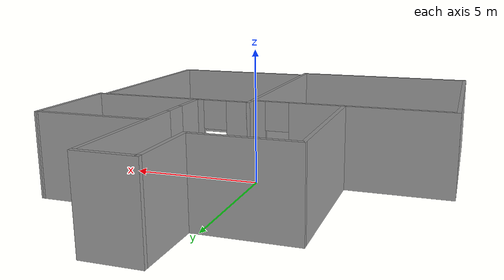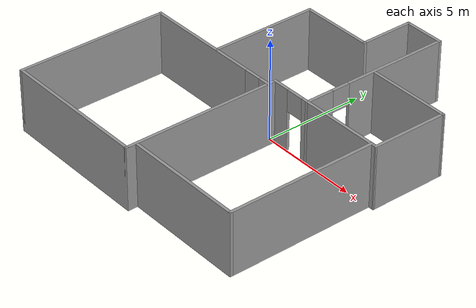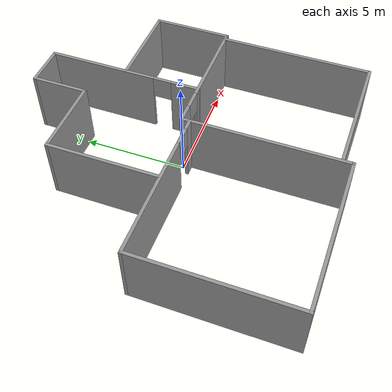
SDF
<?xml version='1.0'?>
<sdf version='1.6'>
  <model name='bh9f_lab'>
    <pose frame=''>-0.318898 -0.045 0 0 -0 0</pose>
    <link name='Wall_0'>
      <pose frame=''>-3.1331 -0.253 0 0 -0 3.14159</pose>
      <visual name='Wall_0_Visual_0'>
        <pose frame=''>-3.46145 0 1.55 0 -0 0</pose>
        <geometry>
          <box>
            <size>0.601096 0.15 3.1</size>
          </box>
        </geometry>
        <material>
          <script>
            <uri>file://media/materials/scripts/gazebo.material</uri>
            <name>Gazebo/Grey</name>
          </script>
          <ambient>1 1 1 1</ambient>
        </material>
      </visual>
      <collision name='Wall_0_Collision_0'>
        <geometry>
          <box>
            <size>0.601096 0.15 3.1</size>
          </box>
        </geometry>
        <pose frame=''>-3.46145 0 1.55 0 -0 0</pose>
      </collision>
      <visual name='Wall_0_Visual_1'>
        <pose frame=''>0.750548 0 1.55 0 -0 0</pose>
        <geometry>
          <box>
            <size>6.0229 0.15 3.1</size>
          </box>
        </geometry>
        <material>
          <script>
            <uri>file://media/materials/scripts/gazebo.material</uri>
            <name>Gazebo/Grey</name>
          </script>
          <ambient>1 1 1 1</ambient>
        </material>
      </visual>
      <collision name='Wall_0_Collision_1'>
        <geometry>
          <box>
            <size>6.0229 0.15 3.1</size>
          </box>
        </geometry>
        <pose frame=''>0.750548 0 1.55 0 -0 0</pose>
      </collision>
      <visual name='Wall_0_Visual_3'>
        <pose frame=''>-2.7109 0 2.55 0 -0 0</pose>
        <geometry>
          <box>
            <size>0.9 0.15 1.1</size>
          </box>
        </geometry>
        <material>
          <script>
            <uri>file://media/materials/scripts/gazebo.material</uri>
            <name>Gazebo/Grey</name>
          </script>
          <ambient>1 1 1 1</ambient>
        </material>
      </visual>
      <collision name='Wall_0_Collision_3'>
        <geometry>
          <box>
            <size>0.9 0.15 1.1</size>
          </box>
        </geometry>
        <pose frame=''>-2.7109 0 2.55 0 -0 0</pose>
      </collision>
    </link>
    <link name='Wall_12'>
      <collision name='Wall_12_Collision'>
        <geometry>
          <box>
            <size>7.44 0.15 3.1</size>
          </box>
        </geometry>
        <pose frame=''>0 0 1.55 0 -0 0</pose>
      </collision>
      <visual name='Wall_12_Visual'>
        <pose frame=''>0 0 1.55 0 -0 0</pose>
        <geometry>
          <box>
            <size>7.44 0.15 3.1</size>
          </box>
        </geometry>
        <material>
          <script>
            <uri>file://media/materials/scripts/gazebo.material</uri>
            <name>Gazebo/Grey</name>
          </script>
          <ambient>1 1 1 1</ambient>
        </material>
      </visual>
      <pose frame=''>6.5499 -3.516 0 0 0 -1.5708</pose>
    </link>
    <link name='Wall_14'>
      <collision name='Wall_14_Collision'>
        <geometry>
          <box>
            <size>6 0.15 3.1</size>
          </box>
        </geometry>
        <pose frame=''>0 0 1.55 0 -0 0</pose>
      </collision>
      <visual name='Wall_14_Visual'>
        <pose frame=''>0 0 1.55 0 -0 0</pose>
        <geometry>
          <box>
            <size>6 0.15 3.1</size>
          </box>
        </geometry>
        <material>
          <script>
            <uri>file://media/materials/scripts/gazebo.material</uri>
            <name>Gazebo/Grey</name>
          </script>
          <ambient>1 1 1 1</ambient>
        </material>
      </visual>
      <pose frame=''>3.6249 -7.161 0 0 -0 3.14159</pose>
    </link>
    <link name='Wall_16'>
      <collision name='Wall_16_Collision'>
        <geometry>
          <box>
            <size>3.83 0.15 3.1</size>
          </box>
        </geometry>
        <pose frame=''>0 0 1.55 0 -0 0</pose>
      </collision>
      <visual name='Wall_16_Visual'>
        <pose frame=''>0 0 1.55 0 -0 0</pose>
        <geometry>
          <box>
            <size>3.83 0.15 3.1</size>
          </box>
        </geometry>
        <material>
          <script>
            <uri>file://media/materials/scripts/gazebo.material</uri>
            <name>Gazebo/Grey</name>
          </script>
          <ambient>1 1 1 1</ambient>
        </material>
      </visual>
      <pose frame=''>6.8149 1.975 0 0 -0 1.56808</pose>
    </link>
    <link name='Wall_18'>
      <collision name='Wall_18_Collision'>
        <geometry>
          <box>
            <size>4.33 0.15 3.1</size>
          </box>
        </geometry>
        <pose frame=''>0 0 1.55 0 -0 0</pose>
      </collision>
      <visual name='Wall_18_Visual'>
        <pose frame=''>0 0 1.55 0 -0 0</pose>
        <geometry>
          <box>
            <size>4.33 0.15 3.1</size>
          </box>
        </geometry>
        <material>
          <script>
            <uri>file://media/materials/scripts/gazebo.material</uri>
            <name>Gazebo/Grey</name>
          </script>
          <ambient>1 1 1 1</ambient>
        </material>
      </visual>
      <pose frame=''>4.7299 3.815 0 0 -0 3.14159</pose>
    </link>
    <link name='Wall_2'>
      <collision name='Wall_2_Collision'>
        <geometry>
          <box>
            <size>7.542 0.15 3.1</size>
          </box>
        </geometry>
        <pose frame=''>0 0 1.55 0 -0 0</pose>
      </collision>
      <visual name='Wall_2_Visual'>
        <pose frame=''>0 0 1.55 0 -0 0</pose>
        <geometry>
          <box>
            <size>7.542 0.15 3.1</size>
          </box>
        </geometry>
        <material>
          <script>
            <uri>file://media/materials/scripts/gazebo.material</uri>
            <name>Gazebo/Grey</name>
          </script>
          <ambient>1 1 1 1</ambient>
        </material>
      </visual>
      <pose frame=''>-6.8201 -3.949 0 0 0 -1.5708</pose>
    </link>
    <link name='Wall_20'>
      <pose frame=''>2.6379 3.89 0 0 -0 1.5708</pose>
      <visual name='Wall_20_Visual_0'>
        <pose frame=''>-3.11825 0 1.55 0 -0 0</pose>
        <geometry>
          <box>
            <size>1.42351 0.15 3.1</size>
          </box>
        </geometry>
        <material>
          <script>
            <uri>file://media/materials/scripts/gazebo.material</uri>
            <name>Gazebo/Grey</name>
          </script>
          <ambient>1 1 1 1</ambient>
        </material>
      </visual>
      <collision name='Wall_20_Collision_0'>
        <geometry>
          <box>
            <size>1.42351 0.15 3.1</size>
          </box>
        </geometry>
        <pose frame=''>-3.11825 0 1.55 0 -0 0</pose>
      </collision>
      <visual name='Wall_20_Visual_1'>
        <pose frame=''>1.16175 0 1.55 0 -0 0</pose>
        <geometry>
          <box>
            <size>5.33649 0.15 3.1</size>
          </box>
        </geometry>
        <material>
          <script>
            <uri>file://media/materials/scripts/gazebo.material</uri>
            <name>Gazebo/Grey</name>
          </script>
          <ambient>1 1 1 1</ambient>
        </material>
      </visual>
      <collision name='Wall_20_Collision_1'>
        <geometry>
          <box>
            <size>5.33649 0.15 3.1</size>
          </box>
        </geometry>
        <pose frame=''>1.16175 0 1.55 0 -0 0</pose>
      </collision>
      <visual name='Wall_20_Visual_3'>
        <pose frame=''>-1.95649 0 2.55 0 -0 0</pose>
        <geometry>
          <box>
            <size>0.9 0.15 1.1</size>
          </box>
        </geometry>
        <material>
          <script>
            <uri>file://media/materials/scripts/gazebo.material</uri>
            <name>Gazebo/Grey</name>
          </script>
          <ambient>1 1 1 1</ambient>
        </material>
      </visual>
      <collision name='Wall_20_Collision_3'>
        <geometry>
          <box>
            <size>0.9 0.15 1.1</size>
          </box>
        </geometry>
        <pose frame=''>-1.95649 0 2.55 0 -0 0</pose>
      </collision>
    </link>
    <link name='Wall_24'>
      <collision name='Wall_24_Collision'>
        <geometry>
          <box>
            <size>2.089 0.15 3.1</size>
          </box>
        </geometry>
        <pose frame=''>0 0 1.55 0 -0 0</pose>
      </collision>
      <visual name='Wall_24_Visual'>
        <pose frame=''>0 0 1.55 0 -0 0</pose>
        <geometry>
          <box>
            <size>2.089 0.15 3.1</size>
          </box>
        </geometry>
        <material>
          <script>
            <uri>file://media/materials/scripts/gazebo.material</uri>
            <name>Gazebo/Grey</name>
          </script>
          <ambient>1 1 1 1</ambient>
        </material>
      </visual>
      <pose frame=''>1.6684 7.645 0 0 -0 3.14159</pose>
    </link>
    <link name='Wall_26'>
      <collision name='Wall_26_Collision'>
        <geometry>
          <box>
            <size>2.75 0.15 3.1</size>
          </box>
        </geometry>
        <pose frame=''>0 0 1.55 0 -0 0</pose>
      </collision>
      <visual name='Wall_26_Visual'>
        <pose frame=''>0 0 1.55 0 -0 0</pose>
        <geometry>
          <box>
            <size>2.75 0.15 3.1</size>
          </box>
        </geometry>
        <material>
          <script>
            <uri>file://media/materials/scripts/gazebo.material</uri>
            <name>Gazebo/Grey</name>
          </script>
          <ambient>1 1 1 1</ambient>
        </material>
      </visual>
      <pose frame=''>0.698898 6.345 0 0 0 -1.5708</pose>
    </link>
    <link name='Wall_28'>
      <collision name='Wall_28_Collision'>
        <geometry>
          <box>
            <size>3.75 0.15 3.1</size>
          </box>
        </geometry>
        <pose frame=''>0 0 1.55 0 -0 0</pose>
      </collision>
      <visual name='Wall_28_Visual'>
        <pose frame=''>0 0 1.55 0 -0 0</pose>
        <geometry>
          <box>
            <size>3.75 0.15 3.1</size>
          </box>
        </geometry>
        <material>
          <script>
            <uri>file://media/materials/scripts/gazebo.material</uri>
            <name>Gazebo/Grey</name>
          </script>
          <ambient>1 1 1 1</ambient>
        </material>
      </visual>
      <pose frame=''>-1.1011 5.045 0 0 -0 3.14159</pose>
    </link>
    <link name='Wall_30'>
      <collision name='Wall_30_Collision'>
        <geometry>
          <box>
            <size>5.41 0.15 3.1</size>
          </box>
        </geometry>
        <pose frame=''>0 0 1.55 0 -0 0</pose>
      </collision>
      <visual name='Wall_30_Visual'>
        <pose frame=''>0 0 1.55 0 -0 0</pose>
        <geometry>
          <box>
            <size>5.41 0.15 3.1</size>
          </box>
        </geometry>
        <material>
          <script>
            <uri>file://media/materials/scripts/gazebo.material</uri>
            <name>Gazebo/Grey</name>
          </script>
          <ambient>1 1 1 1</ambient>
        </material>
      </visual>
      <pose frame=''>-2.9011 2.415 0 0 0 -1.5708</pose>
    </link>
    <link name='Wall_4'>
      <collision name='Wall_4_Collision'>
        <geometry>
          <box>
            <size>7.53 0.15 3.1</size>
          </box>
        </geometry>
        <pose frame=''>0 0 1.55 0 -0 0</pose>
      </collision>
      <visual name='Wall_4_Visual'>
        <pose frame=''>0 0 1.55 0 -0 0</pose>
        <geometry>
          <box>
            <size>7.53 0.15 3.1</size>
          </box>
        </geometry>
        <material>
          <script>
            <uri>file://media/materials/scripts/gazebo.material</uri>
            <name>Gazebo/Grey</name>
          </script>
          <ambient>1 1 1 1</ambient>
        </material>
      </visual>
      <pose frame=''>-3.1301 -7.645 0 0 -0 0</pose>
    </link>
    <link name='Wall_6'>
      <collision name='Wall_6_Collision'>
        <geometry>
          <box>
            <size>7.93 0.15 3.1</size>
          </box>
        </geometry>
        <pose frame=''>0 0 1.55 0 -0 0</pose>
      </collision>
      <visual name='Wall_6_Visual'>
        <pose frame=''>0 0 1.55 0 -0 0</pose>
        <geometry>
          <box>
            <size>7.93 0.15 3.1</size>
          </box>
        </geometry>
        <material>
          <script>
            <uri>file://media/materials/scripts/gazebo.material</uri>
            <name>Gazebo/Grey</name>
          </script>
          <ambient>1 1 1 1</ambient>
        </material>
      </visual>
      <pose frame=''>0.559898 -3.755 0 0 -0 1.5708</pose>
    </link>
    <link name='Wall_8'>
      <pose frame=''>3.6849 0.135 0 0 -0 0</pose>
      <visual name='Wall_8_Visual_0'>
        <pose frame=''>-2.73161 0 1.55 0 -0 0</pose>
        <geometry>
          <box>
            <size>0.936778 0.15 3.1</size>
          </box>
        </geometry>
        <material>
          <script>
            <uri>file://media/materials/scripts/gazebo.material</uri>
            <name>Gazebo/Grey</name>
          </script>
          <ambient>1 1 1 1</ambient>
        </material>
      </visual>
      <collision name='Wall_8_Collision_0'>
        <geometry>
          <box>
            <size>0.936778 0.15 3.1</size>
          </box>
        </geometry>
        <pose frame=''>-2.73161 0 1.55 0 -0 0</pose>
      </collision>
      <visual name='Wall_8_Visual_1'>
        <pose frame=''>0.918389 0 1.55 0 -0 0</pose>
        <geometry>
          <box>
            <size>4.56322 0.15 3.1</size>
          </box>
        </geometry>
        <material>
          <script>
            <uri>file://media/materials/scripts/gazebo.material</uri>
            <name>Gazebo/Grey</name>
          </script>
          <ambient>1 1 1 1</ambient>
        </material>
      </visual>
      <collision name='Wall_8_Collision_1'>
        <geometry>
          <box>
            <size>4.56322 0.15 3.1</size>
          </box>
        </geometry>
        <pose frame=''>0.918389 0 1.55 0 -0 0</pose>
      </collision>
      <visual name='Wall_8_Visual_3'>
        <pose frame=''>-1.81322 0 2.55 0 -0 0</pose>
        <geometry>
          <box>
            <size>0.9 0.15 1.1</size>
          </box>
        </geometry>
        <material>
          <script>
            <uri>file://media/materials/scripts/gazebo.material</uri>
            <name>Gazebo/Grey</name>
          </script>
          <ambient>1 1 1 1</ambient>
        </material>
      </visual>
      <collision name='Wall_8_Collision_3'>
        <geometry>
          <box>
            <size>0.9 0.15 1.1</size>
          </box>
        </geometry>
        <pose frame=''>-1.81322 0 2.55 0 -0 0</pose>
      </collision>
    </link>
    <static>1</static>
  </model>
</sdf>
